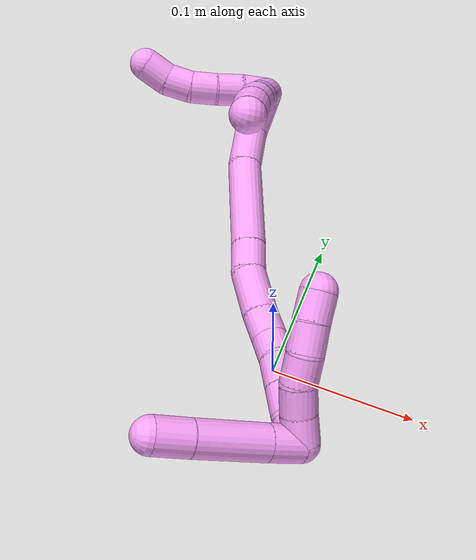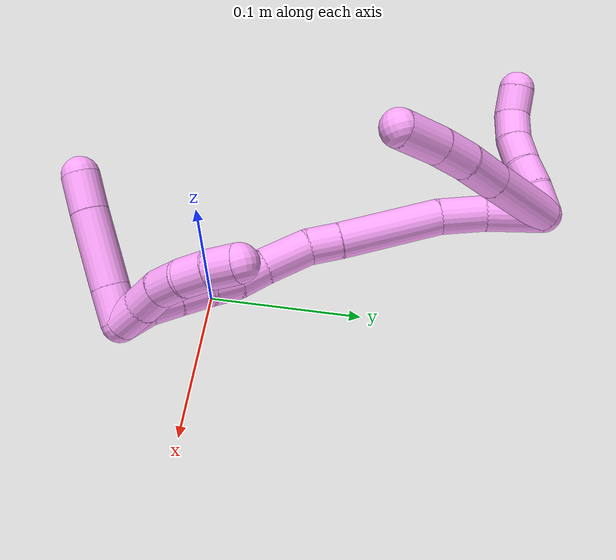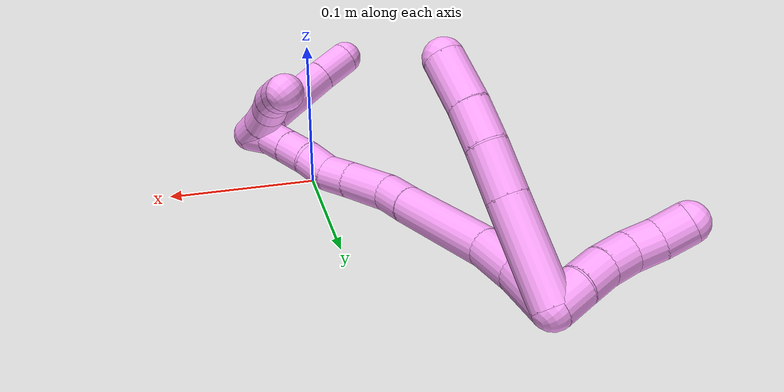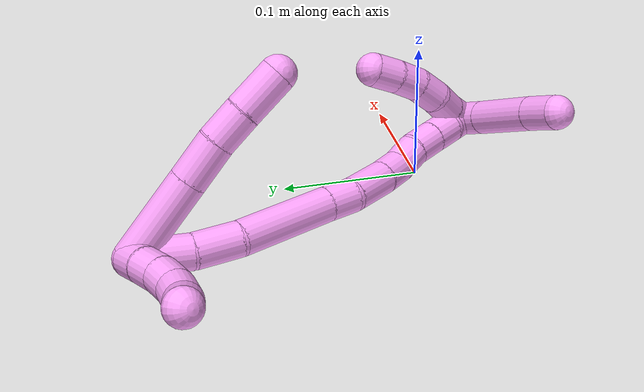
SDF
<sdf version="1.7">
 <world name="default">
  <model name="4">
   <static>0</static>
   <link name="4">
    <collision name="collision-cylinder-e_1_2_8">
     <pose>0.027998 -0.003136 0.012501 0.245818 1.13939 0.157925</pose>
     <geometry><cylinder><radius>0.0125</radius><length>0.061644</length></cylinder></geometry>
     <surface>
      <friction><ode><mu>1.16</mu><mu2>1.16</mu2><slip1>0</slip1><slip2>0</slip2></ode></friction>
      <contact><ode><kp>1e+06</kp><kd>1</kd><max_vel>0</max_vel><min_depth>0.001</min_depth></ode></contact>
     </surface>
    </collision>
    <visual name="visual-cylinder-e_1_2_8">
     <pose>0.027998 -0.003136 0.012501 0.245818 1.13939 0.157925</pose>
     <geometry><cylinder><radius>0.0125</radius><length>0.061644</length></cylinder></geometry>
     <material><ambient>1 0.65098 0.996078 1</ambient></material>
    </visual>
    <collision name="collision-cylinder-e_2_8_9">
     <pose>0.069842 -0.007715 0.031268 0.226247 1.13597 0.144741</pose>
     <geometry><cylinder><radius>0.0125</radius><length>0.030532</length></cylinder></geometry>
     <surface>
      <friction><ode><mu>1.16</mu><mu2>1.16</mu2><slip1>0</slip1><slip2>0</slip2></ode></friction>
      <contact><ode><kp>1e+06</kp><kd>1</kd><max_vel>0</max_vel><min_depth>0.001</min_depth></ode></contact>
     </surface>
    </collision>
    <visual name="visual-cylinder-e_2_8_9">
     <pose>0.069842 -0.007715 0.031268 0.226247 1.13597 0.144741</pose>
     <geometry><cylinder><radius>0.0125</radius><length>0.030532</length></cylinder></geometry>
     <material><ambient>1 0.65098 0.996078 1</ambient></material>
    </visual>
    <collision name="collision-cylinder-e_3_9_10">
     <pose>0.094927 -0.011644 0.042809 0.440575 1.09228 0.270539</pose>
     <geometry><cylinder><radius>0.0125</radius><length>0.025325</length></cylinder></geometry>
     <surface>
      <friction><ode><mu>1.16</mu><mu2>1.16</mu2><slip1>0</slip1><slip2>0</slip2></ode></friction>
      <contact><ode><kp>1e+06</kp><kd>1</kd><max_vel>0</max_vel><min_depth>0.001</min_depth></ode></contact>
     </surface>
    </collision>
    <visual name="visual-cylinder-e_3_9_10">
     <pose>0.094927 -0.011644 0.042809 0.440575 1.09228 0.270539</pose>
     <geometry><cylinder><radius>0.0125</radius><length>0.025325</length></cylinder></geometry>
     <material><ambient>1 0.65098 0.996078 1</ambient></material>
    </visual>
    <collision name="collision-cylinder-e_4_10_6">
     <pose>0.120757 -0.018084 0.054047 0.585383 1.11483 0.371364</pose>
     <geometry><cylinder><radius>0.0125</radius><length>0.032499</length></cylinder></geometry>
     <surface>
      <friction><ode><mu>1.16</mu><mu2>1.16</mu2><slip1>0</slip1><slip2>0</slip2></ode></friction>
      <contact><ode><kp>1e+06</kp><kd>1</kd><max_vel>0</max_vel><min_depth>0.001</min_depth></ode></contact>
     </surface>
    </collision>
    <visual name="visual-cylinder-e_4_10_6">
     <pose>0.120757 -0.018084 0.054047 0.585383 1.11483 0.371364</pose>
     <geometry><cylinder><radius>0.0125</radius><length>0.032499</length></cylinder></geometry>
     <material><ambient>1 0.65098 0.996078 1</ambient></material>
    </visual>
    <collision name="collision-cylinder-e_1_2_11">
     <pose>-0.001327 -0.000703 0.009887 0.070946 -0.133048 -0.004729</pose>
     <geometry><cylinder><radius>0.0125</radius><length>0.02</length></cylinder></geometry>
     <surface>
      <friction><ode><mu>1.16</mu><mu2>1.16</mu2><slip1>0</slip1><slip2>0</slip2></ode></friction>
      <contact><ode><kp>1e+06</kp><kd>1</kd><max_vel>0</max_vel><min_depth>0.001</min_depth></ode></contact>
     </surface>
    </collision>
    <visual name="visual-cylinder-e_1_2_11">
     <pose>-0.001327 -0.000703 0.009887 0.070946 -0.133048 -0.004729</pose>
     <geometry><cylinder><radius>0.0125</radius><length>0.02</length></cylinder></geometry>
     <material><ambient>1 0.65098 0.996078 1</ambient></material>
    </visual>
    <collision name="collision-cylinder-e_2_11_12">
     <pose>-0.004336 -0.003191 0.029468 0.182121 -0.169106 -0.015478</pose>
     <geometry><cylinder><radius>0.0125</radius><length>0.02</length></cylinder></geometry>
     <surface>
      <friction><ode><mu>1.16</mu><mu2>1.16</mu2><slip1>0</slip1><slip2>0</slip2></ode></friction>
      <contact><ode><kp>1e+06</kp><kd>1</kd><max_vel>0</max_vel><min_depth>0.001</min_depth></ode></contact>
     </surface>
    </collision>
    <visual name="visual-cylinder-e_2_11_12">
     <pose>-0.004336 -0.003191 0.029468 0.182121 -0.169106 -0.015478</pose>
     <geometry><cylinder><radius>0.0125</radius><length>0.02</length></cylinder></geometry>
     <material><ambient>1 0.65098 0.996078 1</ambient></material>
    </visual>
    <collision name="collision-cylinder-e_3_12_13">
     <pose>-0.008825 -0.006137 0.04869 0.121296 -0.284358 -0.017384</pose>
     <geometry><cylinder><radius>0.0125</radius><length>0.02</length></cylinder></geometry>
     <surface>
      <friction><ode><mu>1.16</mu><mu2>1.16</mu2><slip1>0</slip1><slip2>0</slip2></ode></friction>
      <contact><ode><kp>1e+06</kp><kd>1</kd><max_vel>0</max_vel><min_depth>0.001</min_depth></ode></contact>
     </surface>
    </collision>
    <visual name="visual-cylinder-e_3_12_13">
     <pose>-0.008825 -0.006137 0.04869 0.121296 -0.284358 -0.017384</pose>
     <geometry><cylinder><radius>0.0125</radius><length>0.02</length></cylinder></geometry>
     <material><ambient>1 0.65098 0.996078 1</ambient></material>
    </visual>
    <collision name="collision-cylinder-e_4_13_14">
     <pose>-0.015148 -0.006283 0.067523 -0.108734 -0.359446 0.019774</pose>
     <geometry><cylinder><radius>0.0125</radius><length>0.02</length></cylinder></geometry>
     <surface>
      <friction><ode><mu>1.16</mu><mu2>1.16</mu2><slip1>0</slip1><slip2>0</slip2></ode></friction>
      <contact><ode><kp>1e+06</kp><kd>1</kd><max_vel>0</max_vel><min_depth>0.001</min_depth></ode></contact>
     </surface>
    </collision>
    <visual name="visual-cylinder-e_4_13_14">
     <pose>-0.015148 -0.006283 0.067523 -0.108734 -0.359446 0.019774</pose>
     <geometry><cylinder><radius>0.0125</radius><length>0.02</length></cylinder></geometry>
     <material><ambient>1 0.65098 0.996078 1</ambient></material>
    </visual>
    <collision name="collision-cylinder-e_5_14_5">
     <pose>-0.020793 -0.001217 0.085721 -0.42734 -0.214411 0.046694</pose>
     <geometry><cylinder><radius>0.0125</radius><length>0.02</length></cylinder></geometry>
     <surface>
      <friction><ode><mu>1.16</mu><mu2>1.16</mu2><slip1>0</slip1><slip2>0</slip2></ode></friction>
      <contact><ode><kp>1e+06</kp><kd>1</kd><max_vel>0</max_vel><min_depth>0.001</min_depth></ode></contact>
     </surface>
    </collision>
    <visual name="visual-cylinder-e_5_14_5">
     <pose>-0.020793 -0.001217 0.085721 -0.42734 -0.214411 0.046694</pose>
     <geometry><cylinder><radius>0.0125</radius><length>0.02</length></cylinder></geometry>
     <material><ambient>1 0.65098 0.996078 1</ambient></material>
    </visual>
    <collision name="collision-cylinder-e_1_2_15">
     <pose>0.008753 -0.016503 0.006197 1.2116 0.460881 0.322204</pose>
     <geometry><cylinder><radius>0.0125</radius><length>0.039363</length></cylinder></geometry>
     <surface>
      <friction><ode><mu>1.16</mu><mu2>1.16</mu2><slip1>0</slip1><slip2>0</slip2></ode></friction>
      <contact><ode><kp>1e+06</kp><kd>1</kd><max_vel>0</max_vel><min_depth>0.001</min_depth></ode></contact>
     </surface>
    </collision>
    <visual name="visual-cylinder-e_1_2_15">
     <pose>0.008753 -0.016503 0.006197 1.2116 0.460881 0.322204</pose>
     <geometry><cylinder><radius>0.0125</radius><length>0.039363</length></cylinder></geometry>
     <material><ambient>1 0.65098 0.996078 1</ambient></material>
    </visual>
    <collision name="collision-cylinder-e_2_15_16">
     <pose>0.026782 -0.0458 0.015562 1.32803 0.613243 0.485742</pose>
     <geometry><cylinder><radius>0.0125</radius><length>0.032236</length></cylinder></geometry>
     <surface>
      <friction><ode><mu>1.16</mu><mu2>1.16</mu2><slip1>0</slip1><slip2>0</slip2></ode></friction>
      <contact><ode><kp>1e+06</kp><kd>1</kd><max_vel>0</max_vel><min_depth>0.001</min_depth></ode></contact>
     </surface>
    </collision>
    <visual name="visual-cylinder-e_2_15_16">
     <pose>0.026782 -0.0458 0.015562 1.32803 0.613243 0.485742</pose>
     <geometry><cylinder><radius>0.0125</radius><length>0.032236</length></cylinder></geometry>
     <material><ambient>1 0.65098 0.996078 1</ambient></material>
    </visual>
    <collision name="collision-cylinder-e_3_16_17">
     <pose>0.058805 -0.085863 0.019511 1.54216 0.695034 0.676893</pose>
     <geometry><cylinder><radius>0.0125</radius><length>0.071036</length></cylinder></geometry>
     <surface>
      <friction><ode><mu>1.16</mu><mu2>1.16</mu2><slip1>0</slip1><slip2>0</slip2></ode></friction>
      <contact><ode><kp>1e+06</kp><kd>1</kd><max_vel>0</max_vel><min_depth>0.001</min_depth></ode></contact>
     </surface>
    </collision>
    <visual name="visual-cylinder-e_3_16_17">
     <pose>0.058805 -0.085863 0.019511 1.54216 0.695034 0.676893</pose>
     <geometry><cylinder><radius>0.0125</radius><length>0.071036</length></cylinder></geometry>
     <material><ambient>1 0.65098 0.996078 1</ambient></material>
    </visual>
    <collision name="collision-cylinder-e_4_17_18">
     <pose>0.08848 -0.12174 0.021048 1.48329 0.67577 0.622819</pose>
     <geometry><cylinder><radius>0.0125</radius><length>0.022156</length></cylinder></geometry>
     <surface>
      <friction><ode><mu>1.16</mu><mu2>1.16</mu2><slip1>0</slip1><slip2>0</slip2></ode></friction>
      <contact><ode><kp>1e+06</kp><kd>1</kd><max_vel>0</max_vel><min_depth>0.001</min_depth></ode></contact>
     </surface>
    </collision>
    <visual name="visual-cylinder-e_4_17_18">
     <pose>0.08848 -0.12174 0.021048 1.48329 0.67577 0.622819</pose>
     <geometry><cylinder><radius>0.0125</radius><length>0.022156</length></cylinder></geometry>
     <material><ambient>1 0.65098 0.996078 1</ambient></material>
    </visual>
    <collision name="collision-cylinder-e_5_18_19">
     <pose>0.106746 -0.142206 0.01895 1.80701 0.749006 0.925521</pose>
     <geometry><cylinder><radius>0.0125</radius><length>0.033301</length></cylinder></geometry>
     <surface>
      <friction><ode><mu>1.16</mu><mu2>1.16</mu2><slip1>0</slip1><slip2>0</slip2></ode></friction>
      <contact><ode><kp>1e+06</kp><kd>1</kd><max_vel>0</max_vel><min_depth>0.001</min_depth></ode></contact>
     </surface>
    </collision>
    <visual name="visual-cylinder-e_5_18_19">
     <pose>0.106746 -0.142206 0.01895 1.80701 0.749006 0.925521</pose>
     <geometry><cylinder><radius>0.0125</radius><length>0.033301</length></cylinder></geometry>
     <material><ambient>1 0.65098 0.996078 1</ambient></material>
    </visual>
    <collision name="collision-cylinder-e_6_19_20">
     <pose>0.125377 -0.160945 0.013705 1.90509 0.785866 1.05527</pose>
     <geometry><cylinder><radius>0.0125</radius><length>0.020619</length></cylinder></geometry>
     <surface>
      <friction><ode><mu>1.16</mu><mu2>1.16</mu2><slip1>0</slip1><slip2>0</slip2></ode></friction>
      <contact><ode><kp>1e+06</kp><kd>1</kd><max_vel>0</max_vel><min_depth>0.001</min_depth></ode></contact>
     </surface>
    </collision>
    <visual name="visual-cylinder-e_6_19_20">
     <pose>0.125377 -0.160945 0.013705 1.90509 0.785866 1.05527</pose>
     <geometry><cylinder><radius>0.0125</radius><length>0.020619</length></cylinder></geometry>
     <material><ambient>1 0.65098 0.996078 1</ambient></material>
    </visual>
    <collision name="collision-cylinder-e_7_20_21">
     <pose>0.141453 -0.172603 0.010841 1.66956 1.07072 1.15951</pose>
     <geometry><cylinder><radius>0.0125</radius><length>0.020015</length></cylinder></geometry>
     <surface>
      <friction><ode><mu>1.16</mu><mu2>1.16</mu2><slip1>0</slip1><slip2>0</slip2></ode></friction>
      <contact><ode><kp>1e+06</kp><kd>1</kd><max_vel>0</max_vel><min_depth>0.001</min_depth></ode></contact>
     </surface>
    </collision>
    <visual name="visual-cylinder-e_7_20_21">
     <pose>0.141453 -0.172603 0.010841 1.66956 1.07072 1.15951</pose>
     <geometry><cylinder><radius>0.0125</radius><length>0.020015</length></cylinder></geometry>
     <material><ambient>1 0.65098 0.996078 1</ambient></material>
    </visual>
    <collision name="collision-cylinder-e_8_21_22">
     <pose>0.158136 -0.184267 0.009797 1.65353 0.852056 0.916084</pose>
     <geometry><cylinder><radius>0.0125</radius><length>0.020996</length></cylinder></geometry>
     <surface>
      <friction><ode><mu>1.16</mu><mu2>1.16</mu2><slip1>0</slip1><slip2>0</slip2></ode></friction>
      <contact><ode><kp>1e+06</kp><kd>1</kd><max_vel>0</max_vel><min_depth>0.001</min_depth></ode></contact>
     </surface>
    </collision>
    <visual name="visual-cylinder-e_8_21_22">
     <pose>0.158136 -0.184267 0.009797 1.65353 0.852056 0.916084</pose>
     <geometry><cylinder><radius>0.0125</radius><length>0.020996</length></cylinder></geometry>
     <material><ambient>1 0.65098 0.996078 1</ambient></material>
    </visual>
    <collision name="collision-cylinder-e_9_22_23">
     <pose>0.173551 -0.197911 0.008586 1.66511 0.836248 0.908547</pose>
     <geometry><cylinder><radius>0.0125</radius><length>0.020249</length></cylinder></geometry>
     <surface>
      <friction><ode><mu>1.16</mu><mu2>1.16</mu2><slip1>0</slip1><slip2>0</slip2></ode></friction>
      <contact><ode><kp>1e+06</kp><kd>1</kd><max_vel>0</max_vel><min_depth>0.001</min_depth></ode></contact>
     </surface>
    </collision>
    <visual name="visual-cylinder-e_9_22_23">
     <pose>0.173551 -0.197911 0.008586 1.66511 0.836248 0.908547</pose>
     <geometry><cylinder><radius>0.0125</radius><length>0.020249</length></cylinder></geometry>
     <material><ambient>1 0.65098 0.996078 1</ambient></material>
    </visual>
    <collision name="collision-cylinder-e_10_23_1">
     <pose>0.187629 -0.211671 0.005091 1.958 0.714737 1.01415</pose>
     <geometry><cylinder><radius>0.0125</radius><length>0.020029</length></cylinder></geometry>
     <surface>
      <friction><ode><mu>1.16</mu><mu2>1.16</mu2><slip1>0</slip1><slip2>0</slip2></ode></friction>
      <contact><ode><kp>1e+06</kp><kd>1</kd><max_vel>0</max_vel><min_depth>0.001</min_depth></ode></contact>
     </surface>
    </collision>
    <visual name="visual-cylinder-e_10_23_1">
     <pose>0.187629 -0.211671 0.005091 1.958 0.714737 1.01415</pose>
     <geometry><cylinder><radius>0.0125</radius><length>0.020029</length></cylinder></geometry>
     <material><ambient>1 0.65098 0.996078 1</ambient></material>
    </visual>
    <collision name="collision-cylinder-e_1_1_24">
     <pose>0.194352 -0.219065 0.013987 0.033171 0.013595 0.000226</pose>
     <geometry><cylinder><radius>0.0125</radius><length>0.023519</length></cylinder></geometry>
     <surface>
      <friction><ode><mu>1.16</mu><mu2>1.16</mu2><slip1>0</slip1><slip2>0</slip2></ode></friction>
      <contact><ode><kp>1e+06</kp><kd>1</kd><max_vel>0</max_vel><min_depth>0.001</min_depth></ode></contact>
     </surface>
    </collision>
    <visual name="visual-cylinder-e_1_1_24">
     <pose>0.194352 -0.219065 0.013987 0.033171 0.013595 0.000226</pose>
     <geometry><cylinder><radius>0.0125</radius><length>0.023519</length></cylinder></geometry>
     <material><ambient>1 0.65098 0.996078 1</ambient></material>
    </visual>
    <collision name="collision-cylinder-e_2_24_25">
     <pose>0.195069 -0.21953 0.051269 0.002932 0.021811 3.2e-05</pose>
     <geometry><cylinder><radius>0.0125</radius><length>0.051072</length></cylinder></geometry>
     <surface>
      <friction><ode><mu>1.16</mu><mu2>1.16</mu2><slip1>0</slip1><slip2>0</slip2></ode></friction>
      <contact><ode><kp>1e+06</kp><kd>1</kd><max_vel>0</max_vel><min_depth>0.001</min_depth></ode></contact>
     </surface>
    </collision>
    <visual name="visual-cylinder-e_2_24_25">
     <pose>0.195069 -0.21953 0.051269 0.002932 0.021811 3.2e-05</pose>
     <geometry><cylinder><radius>0.0125</radius><length>0.051072</length></cylinder></geometry>
     <material><ambient>1 0.65098 0.996078 1</ambient></material>
    </visual>
    <collision name="collision-cylinder-e_3_25_4">
     <pose>0.195422 -0.219609 0.089502 0.000327 -0.016053 -3e-06</pose>
     <geometry><cylinder><radius>0.0125</radius><length>0.025409</length></cylinder></geometry>
     <surface>
      <friction><ode><mu>1.16</mu><mu2>1.16</mu2><slip1>0</slip1><slip2>0</slip2></ode></friction>
      <contact><ode><kp>1e+06</kp><kd>1</kd><max_vel>0</max_vel><min_depth>0.001</min_depth></ode></contact>
     </surface>
    </collision>
    <visual name="visual-cylinder-e_3_25_4">
     <pose>0.195422 -0.219609 0.089502 0.000327 -0.016053 -3e-06</pose>
     <geometry><cylinder><radius>0.0125</radius><length>0.025409</length></cylinder></geometry>
     <material><ambient>1 0.65098 0.996078 1</ambient></material>
    </visual>
    <collision name="collision-cylinder-e_1_1_26">
     <pose>0.1936 -0.209092 0.005032 -1.2868 -0.059258 0.04444</pose>
     <geometry><cylinder><radius>0.0125</radius><length>0.02</length></cylinder></geometry>
     <surface>
      <friction><ode><mu>1.16</mu><mu2>1.16</mu2><slip1>0</slip1><slip2>0</slip2></ode></friction>
      <contact><ode><kp>1e+06</kp><kd>1</kd><max_vel>0</max_vel><min_depth>0.001</min_depth></ode></contact>
     </surface>
    </collision>
    <visual name="visual-cylinder-e_1_1_26">
     <pose>0.1936 -0.209092 0.005032 -1.2868 -0.059258 0.04444</pose>
     <geometry><cylinder><radius>0.0125</radius><length>0.02</length></cylinder></geometry>
     <material><ambient>1 0.65098 0.996078 1</ambient></material>
    </visual>
    <collision name="collision-cylinder-e_2_26_27">
     <pose>0.193575 -0.189875 0.010447 -1.30547 0.056752 -0.043393</pose>
     <geometry><cylinder><radius>0.0125</radius><length>0.02</length></cylinder></geometry>
     <surface>
      <friction><ode><mu>1.16</mu><mu2>1.16</mu2><slip1>0</slip1><slip2>0</slip2></ode></friction>
      <contact><ode><kp>1e+06</kp><kd>1</kd><max_vel>0</max_vel><min_depth>0.001</min_depth></ode></contact>
     </surface>
    </collision>
    <visual name="visual-cylinder-e_2_26_27">
     <pose>0.193575 -0.189875 0.010447 -1.30547 0.056752 -0.043393</pose>
     <geometry><cylinder><radius>0.0125</radius><length>0.02</length></cylinder></geometry>
     <material><ambient>1 0.65098 0.996078 1</ambient></material>
    </visual>
    <collision name="collision-cylinder-e_3_27_28">
     <pose>0.194831 -0.170266 0.013231 -1.55421 0.068896 -0.067764</pose>
     <geometry><cylinder><radius>0.0125</radius><length>0.02</length></cylinder></geometry>
     <surface>
      <friction><ode><mu>1.16</mu><mu2>1.16</mu2><slip1>0</slip1><slip2>0</slip2></ode></friction>
      <contact><ode><kp>1e+06</kp><kd>1</kd><max_vel>0</max_vel><min_depth>0.001</min_depth></ode></contact>
     </surface>
    </collision>
    <visual name="visual-cylinder-e_3_27_28">
     <pose>0.194831 -0.170266 0.013231 -1.55421 0.068896 -0.067764</pose>
     <geometry><cylinder><radius>0.0125</radius><length>0.02</length></cylinder></geometry>
     <material><ambient>1 0.65098 0.996078 1</ambient></material>
    </visual>
    <collision name="collision-cylinder-e_4_28_29">
     <pose>0.194196 -0.150387 0.013003 -1.61043 -0.132762 0.138114</pose>
     <geometry><cylinder><radius>0.0125</radius><length>0.02</length></cylinder></geometry>
     <surface>
      <friction><ode><mu>1.16</mu><mu2>1.16</mu2><slip1>0</slip1><slip2>0</slip2></ode></friction>
      <contact><ode><kp>1e+06</kp><kd>1</kd><max_vel>0</max_vel><min_depth>0.001</min_depth></ode></contact>
     </surface>
    </collision>
    <visual name="visual-cylinder-e_4_28_29">
     <pose>0.194196 -0.150387 0.013003 -1.61043 -0.132762 0.138114</pose>
     <geometry><cylinder><radius>0.0125</radius><length>0.02</length></cylinder></geometry>
     <material><ambient>1 0.65098 0.996078 1</ambient></material>
    </visual>
    <collision name="collision-cylinder-e_5_29_3">
     <pose>0.191062 -0.130723 0.011392 -1.69503 -0.181985 0.205964</pose>
     <geometry><cylinder><radius>0.0125</radius><length>0.02</length></cylinder></geometry>
     <surface>
      <friction><ode><mu>1.16</mu><mu2>1.16</mu2><slip1>0</slip1><slip2>0</slip2></ode></friction>
      <contact><ode><kp>1e+06</kp><kd>1</kd><max_vel>0</max_vel><min_depth>0.001</min_depth></ode></contact>
     </surface>
    </collision>
    <visual name="visual-cylinder-e_5_29_3">
     <pose>0.191062 -0.130723 0.011392 -1.69503 -0.181985 0.205964</pose>
     <geometry><cylinder><radius>0.0125</radius><length>0.02</length></cylinder></geometry>
     <material><ambient>1 0.65098 0.996078 1</ambient></material>
    </visual>
    <collision name="collision-sphere-3">
     <pose>0.189252 -0.120964 0.010173 0 -0 0</pose>
     <geometry><sphere><radius>0.0125</radius></sphere></geometry>
     <surface>
      <friction><ode><mu>1.16</mu><mu2>1.16</mu2><slip1>0</slip1><slip2>0</slip2></ode></friction>
      <contact><ode><kp>1e+06</kp><kd>1</kd><max_vel>0</max_vel><min_depth>0.001</min_depth></ode></contact>
     </surface>
    </collision>
    <visual name="visual-sphere-3">
     <pose>0.189252 -0.120964 0.010173 0 -0 0</pose>
     <geometry><sphere><radius>0.0125</radius></sphere></geometry>
     <material><ambient>1 0.65098 0.996078 1</ambient></material>
    </visual>
    <collision name="collision-sphere-29">
     <pose>0.192872 -0.140482 0.012611 0 -0 0</pose>
     <geometry><sphere><radius>0.0125</radius></sphere></geometry>
     <surface>
      <friction><ode><mu>1.16</mu><mu2>1.16</mu2><slip1>0</slip1><slip2>0</slip2></ode></friction>
      <contact><ode><kp>1e+06</kp><kd>1</kd><max_vel>0</max_vel><min_depth>0.001</min_depth></ode></contact>
     </surface>
    </collision>
    <visual name="visual-sphere-29">
     <pose>0.192872 -0.140482 0.012611 0 -0 0</pose>
     <geometry><sphere><radius>0.0125</radius></sphere></geometry>
     <material><ambient>1 0.65098 0.996078 1</ambient></material>
    </visual>
    <collision name="collision-sphere-28">
     <pose>0.195519 -0.160291 0.013396 0 -0 0</pose>
     <geometry><sphere><radius>0.0125</radius></sphere></geometry>
     <surface>
      <friction><ode><mu>1.16</mu><mu2>1.16</mu2><slip1>0</slip1><slip2>0</slip2></ode></friction>
      <contact><ode><kp>1e+06</kp><kd>1</kd><max_vel>0</max_vel><min_depth>0.001</min_depth></ode></contact>
     </surface>
    </collision>
    <visual name="visual-sphere-28">
     <pose>0.195519 -0.160291 0.013396 0 -0 0</pose>
     <geometry><sphere><radius>0.0125</radius></sphere></geometry>
     <material><ambient>1 0.65098 0.996078 1</ambient></material>
    </visual>
    <collision name="collision-sphere-27">
     <pose>0.194143 -0.180241 0.013065 0 -0 0</pose>
     <geometry><sphere><radius>0.0125</radius></sphere></geometry>
     <surface>
      <friction><ode><mu>1.16</mu><mu2>1.16</mu2><slip1>0</slip1><slip2>0</slip2></ode></friction>
      <contact><ode><kp>1e+06</kp><kd>1</kd><max_vel>0</max_vel><min_depth>0.001</min_depth></ode></contact>
     </surface>
    </collision>
    <visual name="visual-sphere-27">
     <pose>0.194143 -0.180241 0.013065 0 -0 0</pose>
     <geometry><sphere><radius>0.0125</radius></sphere></geometry>
     <material><ambient>1 0.65098 0.996078 1</ambient></material>
    </visual>
    <collision name="collision-sphere-26">
     <pose>0.193008 -0.19951 0.007829 0 -0 0</pose>
     <geometry><sphere><radius>0.0125</radius></sphere></geometry>
     <surface>
      <friction><ode><mu>1.16</mu><mu2>1.16</mu2><slip1>0</slip1><slip2>0</slip2></ode></friction>
      <contact><ode><kp>1e+06</kp><kd>1</kd><max_vel>0</max_vel><min_depth>0.001</min_depth></ode></contact>
     </surface>
    </collision>
    <visual name="visual-sphere-26">
     <pose>0.193008 -0.19951 0.007829 0 -0 0</pose>
     <geometry><sphere><radius>0.0125</radius></sphere></geometry>
     <material><ambient>1 0.65098 0.996078 1</ambient></material>
    </visual>
    <collision name="collision-sphere-4">
     <pose>0.195218 -0.219613 0.102204 0 -0 0</pose>
     <geometry><sphere><radius>0.0125</radius></sphere></geometry>
     <surface>
      <friction><ode><mu>1.16</mu><mu2>1.16</mu2><slip1>0</slip1><slip2>0</slip2></ode></friction>
      <contact><ode><kp>1e+06</kp><kd>1</kd><max_vel>0</max_vel><min_depth>0.001</min_depth></ode></contact>
     </surface>
    </collision>
    <visual name="visual-sphere-4">
     <pose>0.195218 -0.219613 0.102204 0 -0 0</pose>
     <geometry><sphere><radius>0.0125</radius></sphere></geometry>
     <material><ambient>1 0.65098 0.996078 1</ambient></material>
    </visual>
    <collision name="collision-sphere-25">
     <pose>0.195626 -0.219605 0.076799 0 -0 0</pose>
     <geometry><sphere><radius>0.0125</radius></sphere></geometry>
     <surface>
      <friction><ode><mu>1.16</mu><mu2>1.16</mu2><slip1>0</slip1><slip2>0</slip2></ode></friction>
      <contact><ode><kp>1e+06</kp><kd>1</kd><max_vel>0</max_vel><min_depth>0.001</min_depth></ode></contact>
     </surface>
    </collision>
    <visual name="visual-sphere-25">
     <pose>0.195626 -0.219605 0.076799 0 -0 0</pose>
     <geometry><sphere><radius>0.0125</radius></sphere></geometry>
     <material><ambient>1 0.65098 0.996078 1</ambient></material>
    </visual>
    <collision name="collision-sphere-24">
     <pose>0.194512 -0.219455 0.025739 0 -0 0</pose>
     <geometry><sphere><radius>0.0125</radius></sphere></geometry>
     <surface>
      <friction><ode><mu>1.16</mu><mu2>1.16</mu2><slip1>0</slip1><slip2>0</slip2></ode></friction>
      <contact><ode><kp>1e+06</kp><kd>1</kd><max_vel>0</max_vel><min_depth>0.001</min_depth></ode></contact>
     </surface>
    </collision>
    <visual name="visual-sphere-24">
     <pose>0.194512 -0.219455 0.025739 0 -0 0</pose>
     <geometry><sphere><radius>0.0125</radius></sphere></geometry>
     <material><ambient>1 0.65098 0.996078 1</ambient></material>
    </visual>
    <collision name="collision-sphere-1">
     <pose>0.194193 -0.218675 0.002235 0 -0 0</pose>
     <geometry><sphere><radius>0.0125</radius></sphere></geometry>
     <surface>
      <friction><ode><mu>1.16</mu><mu2>1.16</mu2><slip1>0</slip1><slip2>0</slip2></ode></friction>
      <contact><ode><kp>1e+06</kp><kd>1</kd><max_vel>0</max_vel><min_depth>0.001</min_depth></ode></contact>
     </surface>
    </collision>
    <visual name="visual-sphere-1">
     <pose>0.194193 -0.218675 0.002235 0 -0 0</pose>
     <geometry><sphere><radius>0.0125</radius></sphere></geometry>
     <material><ambient>1 0.65098 0.996078 1</ambient></material>
    </visual>
    <collision name="collision-sphere-23">
     <pose>0.181065 -0.204667 0.007947 0 -0 0</pose>
     <geometry><sphere><radius>0.0125</radius></sphere></geometry>
     <surface>
      <friction><ode><mu>1.16</mu><mu2>1.16</mu2><slip1>0</slip1><slip2>0</slip2></ode></friction>
      <contact><ode><kp>1e+06</kp><kd>1</kd><max_vel>0</max_vel><min_depth>0.001</min_depth></ode></contact>
     </surface>
    </collision>
    <visual name="visual-sphere-23">
     <pose>0.181065 -0.204667 0.007947 0 -0 0</pose>
     <geometry><sphere><radius>0.0125</radius></sphere></geometry>
     <material><ambient>1 0.65098 0.996078 1</ambient></material>
    </visual>
    <collision name="collision-sphere-22">
     <pose>0.166037 -0.191155 0.009225 0 -0 0</pose>
     <geometry><sphere><radius>0.0125</radius></sphere></geometry>
     <surface>
      <friction><ode><mu>1.16</mu><mu2>1.16</mu2><slip1>0</slip1><slip2>0</slip2></ode></friction>
      <contact><ode><kp>1e+06</kp><kd>1</kd><max_vel>0</max_vel><min_depth>0.001</min_depth></ode></contact>
     </surface>
    </collision>
    <visual name="visual-sphere-22">
     <pose>0.166037 -0.191155 0.009225 0 -0 0</pose>
     <geometry><sphere><radius>0.0125</radius></sphere></geometry>
     <material><ambient>1 0.65098 0.996078 1</ambient></material>
    </visual>
    <collision name="collision-sphere-21">
     <pose>0.150235 -0.177378 0.010368 0 -0 0</pose>
     <geometry><sphere><radius>0.0125</radius></sphere></geometry>
     <surface>
      <friction><ode><mu>1.16</mu><mu2>1.16</mu2><slip1>0</slip1><slip2>0</slip2></ode></friction>
      <contact><ode><kp>1e+06</kp><kd>1</kd><max_vel>0</max_vel><min_depth>0.001</min_depth></ode></contact>
     </surface>
    </collision>
    <visual name="visual-sphere-21">
     <pose>0.150235 -0.177378 0.010368 0 -0 0</pose>
     <geometry><sphere><radius>0.0125</radius></sphere></geometry>
     <material><ambient>1 0.65098 0.996078 1</ambient></material>
    </visual>
    <collision name="collision-sphere-11">
     <pose>-0.002653 -0.001405 0.019773 0 -0 0</pose>
     <geometry><sphere><radius>0.0125</radius></sphere></geometry>
     <surface>
      <friction><ode><mu>1.16</mu><mu2>1.16</mu2><slip1>0</slip1><slip2>0</slip2></ode></friction>
      <contact><ode><kp>1e+06</kp><kd>1</kd><max_vel>0</max_vel><min_depth>0.001</min_depth></ode></contact>
     </surface>
    </collision>
    <visual name="visual-sphere-11">
     <pose>-0.002653 -0.001405 0.019773 0 -0 0</pose>
     <geometry><sphere><radius>0.0125</radius></sphere></geometry>
     <material><ambient>1 0.65098 0.996078 1</ambient></material>
    </visual>
    <collision name="collision-sphere-6">
     <pose>0.135346 -0.022038 0.06001 0 -0 0</pose>
     <geometry><sphere><radius>0.0125</radius></sphere></geometry>
     <surface>
      <friction><ode><mu>1.16</mu><mu2>1.16</mu2><slip1>0</slip1><slip2>0</slip2></ode></friction>
      <contact><ode><kp>1e+06</kp><kd>1</kd><max_vel>0</max_vel><min_depth>0.001</min_depth></ode></contact>
     </surface>
    </collision>
    <visual name="visual-sphere-6">
     <pose>0.135346 -0.022038 0.06001 0 -0 0</pose>
     <geometry><sphere><radius>0.0125</radius></sphere></geometry>
     <material><ambient>1 0.65098 0.996078 1</ambient></material>
    </visual>
    <collision name="collision-sphere-10">
     <pose>0.106167 -0.014131 0.048083 0 -0 0</pose>
     <geometry><sphere><radius>0.0125</radius></sphere></geometry>
     <surface>
      <friction><ode><mu>1.16</mu><mu2>1.16</mu2><slip1>0</slip1><slip2>0</slip2></ode></friction>
      <contact><ode><kp>1e+06</kp><kd>1</kd><max_vel>0</max_vel><min_depth>0.001</min_depth></ode></contact>
     </surface>
    </collision>
    <visual name="visual-sphere-10">
     <pose>0.106167 -0.014131 0.048083 0 -0 0</pose>
     <geometry><sphere><radius>0.0125</radius></sphere></geometry>
     <material><ambient>1 0.65098 0.996078 1</ambient></material>
    </visual>
    <collision name="collision-sphere-9">
     <pose>0.083687 -0.009158 0.037535 0 -0 0</pose>
     <geometry><sphere><radius>0.0125</radius></sphere></geometry>
     <surface>
      <friction><ode><mu>1.16</mu><mu2>1.16</mu2><slip1>0</slip1><slip2>0</slip2></ode></friction>
      <contact><ode><kp>1e+06</kp><kd>1</kd><max_vel>0</max_vel><min_depth>0.001</min_depth></ode></contact>
     </surface>
    </collision>
    <visual name="visual-sphere-9">
     <pose>0.083687 -0.009158 0.037535 0 -0 0</pose>
     <geometry><sphere><radius>0.0125</radius></sphere></geometry>
     <material><ambient>1 0.65098 0.996078 1</ambient></material>
    </visual>
    <collision name="collision-sphere-2">
     <geometry><sphere><radius>0.0125</radius></sphere></geometry>
     <surface>
      <friction><ode><mu>1.16</mu><mu2>1.16</mu2><slip1>0</slip1><slip2>0</slip2></ode></friction>
      <contact><ode><kp>1e+06</kp><kd>1</kd><max_vel>0</max_vel><min_depth>0.001</min_depth></ode></contact>
     </surface>
    </collision>
    <visual name="visual-sphere-2">
     <geometry><sphere><radius>0.0125</radius></sphere></geometry>
     <material><ambient>1 0.65098 0.996078 1</ambient></material>
    </visual>
    <collision name="collision-sphere-19">
     <pose>0.118084 -0.154061 0.016096 0 -0 0</pose>
     <geometry><sphere><radius>0.0125</radius></sphere></geometry>
     <surface>
      <friction><ode><mu>1.16</mu><mu2>1.16</mu2><slip1>0</slip1><slip2>0</slip2></ode></friction>
      <contact><ode><kp>1e+06</kp><kd>1</kd><max_vel>0</max_vel><min_depth>0.001</min_depth></ode></contact>
     </surface>
    </collision>
    <visual name="visual-sphere-19">
     <pose>0.118084 -0.154061 0.016096 0 -0 0</pose>
     <geometry><sphere><radius>0.0125</radius></sphere></geometry>
     <material><ambient>1 0.65098 0.996078 1</ambient></material>
    </visual>
    <collision name="collision-sphere-8">
     <pose>0.055997 -0.006273 0.025002 0 -0 0</pose>
     <geometry><sphere><radius>0.0125</radius></sphere></geometry>
     <surface>
      <friction><ode><mu>1.16</mu><mu2>1.16</mu2><slip1>0</slip1><slip2>0</slip2></ode></friction>
      <contact><ode><kp>1e+06</kp><kd>1</kd><max_vel>0</max_vel><min_depth>0.001</min_depth></ode></contact>
     </surface>
    </collision>
    <visual name="visual-sphere-8">
     <pose>0.055997 -0.006273 0.025002 0 -0 0</pose>
     <geometry><sphere><radius>0.0125</radius></sphere></geometry>
     <material><ambient>1 0.65098 0.996078 1</ambient></material>
    </visual>
    <collision name="collision-sphere-12">
     <pose>-0.006019 -0.004976 0.039162 0 -0 0</pose>
     <geometry><sphere><radius>0.0125</radius></sphere></geometry>
     <surface>
      <friction><ode><mu>1.16</mu><mu2>1.16</mu2><slip1>0</slip1><slip2>0</slip2></ode></friction>
      <contact><ode><kp>1e+06</kp><kd>1</kd><max_vel>0</max_vel><min_depth>0.001</min_depth></ode></contact>
     </surface>
    </collision>
    <visual name="visual-sphere-12">
     <pose>-0.006019 -0.004976 0.039162 0 -0 0</pose>
     <geometry><sphere><radius>0.0125</radius></sphere></geometry>
     <material><ambient>1 0.65098 0.996078 1</ambient></material>
    </visual>
    <collision name="collision-sphere-13">
     <pose>-0.01163 -0.007299 0.058218 0 -0 0</pose>
     <geometry><sphere><radius>0.0125</radius></sphere></geometry>
     <surface>
      <friction><ode><mu>1.16</mu><mu2>1.16</mu2><slip1>0</slip1><slip2>0</slip2></ode></friction>
      <contact><ode><kp>1e+06</kp><kd>1</kd><max_vel>0</max_vel><min_depth>0.001</min_depth></ode></contact>
     </surface>
    </collision>
    <visual name="visual-sphere-13">
     <pose>-0.01163 -0.007299 0.058218 0 -0 0</pose>
     <geometry><sphere><radius>0.0125</radius></sphere></geometry>
     <material><ambient>1 0.65098 0.996078 1</ambient></material>
    </visual>
    <collision name="collision-sphere-14">
     <pose>-0.018665 -0.005267 0.076829 0 -0 0</pose>
     <geometry><sphere><radius>0.0125</radius></sphere></geometry>
     <surface>
      <friction><ode><mu>1.16</mu><mu2>1.16</mu2><slip1>0</slip1><slip2>0</slip2></ode></friction>
      <contact><ode><kp>1e+06</kp><kd>1</kd><max_vel>0</max_vel><min_depth>0.001</min_depth></ode></contact>
     </surface>
    </collision>
    <visual name="visual-sphere-14">
     <pose>-0.018665 -0.005267 0.076829 0 -0 0</pose>
     <geometry><sphere><radius>0.0125</radius></sphere></geometry>
     <material><ambient>1 0.65098 0.996078 1</ambient></material>
    </visual>
    <collision name="collision-sphere-5">
     <pose>-0.022921 0.002832 0.094614 0 -0 0</pose>
     <geometry><sphere><radius>0.0125</radius></sphere></geometry>
     <surface>
      <friction><ode><mu>1.16</mu><mu2>1.16</mu2><slip1>0</slip1><slip2>0</slip2></ode></friction>
      <contact><ode><kp>1e+06</kp><kd>1</kd><max_vel>0</max_vel><min_depth>0.001</min_depth></ode></contact>
     </surface>
    </collision>
    <visual name="visual-sphere-5">
     <pose>-0.022921 0.002832 0.094614 0 -0 0</pose>
     <geometry><sphere><radius>0.0125</radius></sphere></geometry>
     <material><ambient>1 0.65098 0.996078 1</ambient></material>
    </visual>
    <collision name="collision-sphere-15">
     <pose>0.017506 -0.033006 0.012393 0 -0 0</pose>
     <geometry><sphere><radius>0.0125</radius></sphere></geometry>
     <surface>
      <friction><ode><mu>1.16</mu><mu2>1.16</mu2><slip1>0</slip1><slip2>0</slip2></ode></friction>
      <contact><ode><kp>1e+06</kp><kd>1</kd><max_vel>0</max_vel><min_depth>0.001</min_depth></ode></contact>
     </surface>
    </collision>
    <visual name="visual-sphere-15">
     <pose>0.017506 -0.033006 0.012393 0 -0 0</pose>
     <geometry><sphere><radius>0.0125</radius></sphere></geometry>
     <material><ambient>1 0.65098 0.996078 1</ambient></material>
    </visual>
    <collision name="collision-sphere-16">
     <pose>0.036059 -0.058595 0.01873 0 -0 0</pose>
     <geometry><sphere><radius>0.0125</radius></sphere></geometry>
     <surface>
      <friction><ode><mu>1.16</mu><mu2>1.16</mu2><slip1>0</slip1><slip2>0</slip2></ode></friction>
      <contact><ode><kp>1e+06</kp><kd>1</kd><max_vel>0</max_vel><min_depth>0.001</min_depth></ode></contact>
     </surface>
    </collision>
    <visual name="visual-sphere-16">
     <pose>0.036059 -0.058595 0.01873 0 -0 0</pose>
     <geometry><sphere><radius>0.0125</radius></sphere></geometry>
     <material><ambient>1 0.65098 0.996078 1</ambient></material>
    </visual>
    <collision name="collision-sphere-17">
     <pose>0.081551 -0.11313 0.020292 0 -0 0</pose>
     <geometry><sphere><radius>0.0125</radius></sphere></geometry>
     <surface>
      <friction><ode><mu>1.16</mu><mu2>1.16</mu2><slip1>0</slip1><slip2>0</slip2></ode></friction>
      <contact><ode><kp>1e+06</kp><kd>1</kd><max_vel>0</max_vel><min_depth>0.001</min_depth></ode></contact>
     </surface>
    </collision>
    <visual name="visual-sphere-17">
     <pose>0.081551 -0.11313 0.020292 0 -0 0</pose>
     <geometry><sphere><radius>0.0125</radius></sphere></geometry>
     <material><ambient>1 0.65098 0.996078 1</ambient></material>
    </visual>
    <collision name="collision-sphere-18">
     <pose>0.095409 -0.13035 0.021803 0 -0 0</pose>
     <geometry><sphere><radius>0.0125</radius></sphere></geometry>
     <surface>
      <friction><ode><mu>1.16</mu><mu2>1.16</mu2><slip1>0</slip1><slip2>0</slip2></ode></friction>
      <contact><ode><kp>1e+06</kp><kd>1</kd><max_vel>0</max_vel><min_depth>0.001</min_depth></ode></contact>
     </surface>
    </collision>
    <visual name="visual-sphere-18">
     <pose>0.095409 -0.13035 0.021803 0 -0 0</pose>
     <geometry><sphere><radius>0.0125</radius></sphere></geometry>
     <material><ambient>1 0.65098 0.996078 1</ambient></material>
    </visual>
    <collision name="collision-sphere-20">
     <pose>0.132671 -0.167828 0.011314 0 -0 0</pose>
     <geometry><sphere><radius>0.0125</radius></sphere></geometry>
     <surface>
      <friction><ode><mu>1.16</mu><mu2>1.16</mu2><slip1>0</slip1><slip2>0</slip2></ode></friction>
      <contact><ode><kp>1e+06</kp><kd>1</kd><max_vel>0</max_vel><min_depth>0.001</min_depth></ode></contact>
     </surface>
    </collision>
    <visual name="visual-sphere-20">
     <pose>0.132671 -0.167828 0.011314 0 -0 0</pose>
     <geometry><sphere><radius>0.0125</radius></sphere></geometry>
     <material><ambient>1 0.65098 0.996078 1</ambient></material>
    </visual>
    <inertial>
     <pose>0.099909 -0.100214 0.026514 0 -0 0</pose>
     <mass>0.75</mass>
     <inertia><ixx>0.000132</ixx><ixy>0</ixy><ixz>0</ixz><iyy>0.000101</iyy><iyz>0</iyz><izz>-2e-06</izz></inertia>
    </inertial>
   </link>
   <pose>-0.0883 0.215044 0.016997 0.979401 -0.762783 -0.687835</pose>
  </model>
 </world>
</sdf>
